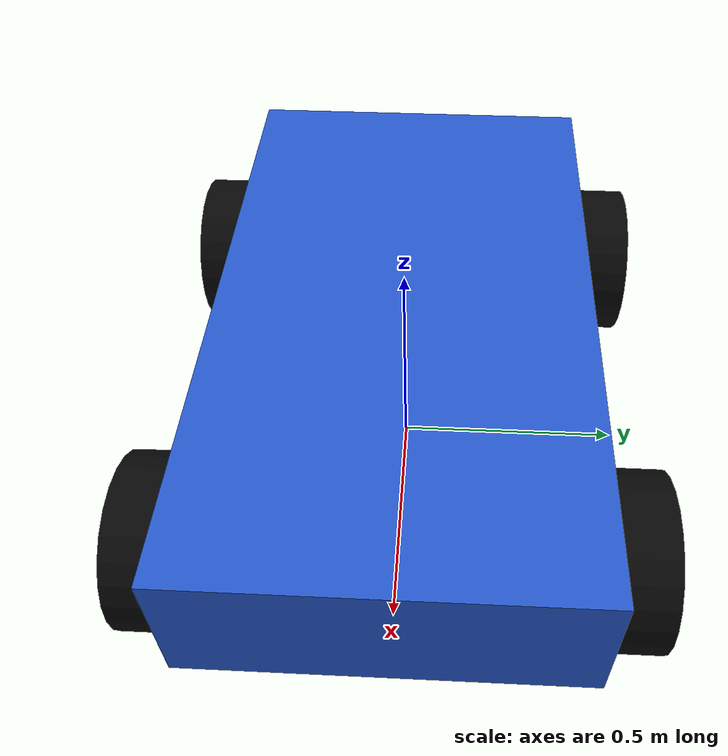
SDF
<?xml version="1.0"?>

<sdf version="1.10">

  <model name="brobot_car">

    <!-- base chassis -->

    <link name="base_link">

      <pose>0 0 0.30 0 0 0</pose>

      <inertial>

        <mass>12.0</mass>

        <inertia>

          <ixx>0.65</ixx>
          <iyy>1.05</iyy>
          <izz>1.35</izz>

          <ixy>0</ixy>
          <ixz>0</ixz>
          <iyz>0</iyz>

        </inertia>

      </inertial>

      <!-- chassis collision -->

      <collision name="base_collision">

        <geometry>

          <box>
            <size>1.4 0.8 0.30</size>
          </box>

        </geometry>

      </collision>

      <!-- chassis visual -->

      <visual name="base_visual">

        <geometry>

          <box>
            <size>1.4 0.8 0.30</size>
          </box>

        </geometry>

        <material>

          <ambient>0.15 0.35 0.8 1</ambient>
          <diffuse>0.15 0.35 0.8 1</diffuse>

        </material>

      </visual>

    </link>

    <!-- front left wheel-->

    <link name="front_left_wheel">

      <pose>0.45 0.47 0.18 1.5708 0 0</pose>

      <inertial>

        <mass>1.0</mass>

        <inertia>

          <ixx>0.015</ixx>
          <iyy>0.015</iyy>
          <izz>0.015</izz>

          <ixy>0</ixy>
          <ixz>0</ixz>
          <iyz>0</iyz>

        </inertia>

      </inertial>

      <collision name="collision">

        <geometry>

          <cylinder>
            <radius>0.18</radius>
            <length>0.12</length>
          </cylinder>

        </geometry>

      </collision>

      <visual name="visual">

        <geometry>

          <cylinder>
            <radius>0.18</radius>
            <length>0.12</length>
          </cylinder>

        </geometry>

        <material>

          <ambient>0.03 0.03 0.03 1</ambient>
          <diffuse>0.03 0.03 0.03 1</diffuse>

        </material>

      </visual>

    </link>

    <!-- front right wheel -->

    <link name="front_right_wheel">

      <pose>0.45 -0.47 0.18 1.5708 0 0</pose>

      <inertial>

        <mass>1.0</mass>

        <inertia>

          <ixx>0.015</ixx>
          <iyy>0.015</iyy>
          <izz>0.015</izz>

          <ixy>0</ixy>
          <ixz>0</ixz>
          <iyz>0</iyz>

        </inertia>

      </inertial>

      <collision name="collision">

        <geometry>

          <cylinder>
            <radius>0.18</radius>
            <length>0.12</length>
          </cylinder>

        </geometry>

      </collision>

      <visual name="visual">

        <geometry>

          <cylinder>
            <radius>0.18</radius>
            <length>0.12</length>
          </cylinder>

        </geometry>

        <material>

          <ambient>0.03 0.03 0.03 1</ambient>
          <diffuse>0.03 0.03 0.03 1</diffuse>

        </material>

      </visual>

    </link>

    <!-- rear left wheel -->

    <link name="rear_left_wheel">

      <pose>-0.45 0.47 0.18 1.5708 0 0</pose>

      <inertial>

        <mass>1.0</mass>

        <inertia>

          <ixx>0.015</ixx>
          <iyy>0.015</iyy>
          <izz>0.015</izz>

          <ixy>0</ixy>
          <ixz>0</ixz>
          <iyz>0</iyz>

        </inertia>

      </inertial>

      <collision name="collision">

        <geometry>

          <cylinder>
            <radius>0.18</radius>
            <length>0.12</length>
          </cylinder>

        </geometry>

      </collision>

      <visual name="visual">

        <geometry>

          <cylinder>
            <radius>0.18</radius>
            <length>0.12</length>
          </cylinder>

        </geometry>

        <material>

          <ambient>0.03 0.03 0.03 1</ambient>
          <diffuse>0.03 0.03 0.03 1</diffuse>

        </material>

      </visual>

    </link>

    <!-- rear right wheel-->

    <link name="rear_right_wheel">

      <pose>-0.45 -0.47 0.18 1.5708 0 0</pose>

      <inertial>

        <mass>1.0</mass>

        <inertia>

          <ixx>0.015</ixx>
          <iyy>0.015</iyy>
          <izz>0.015</izz>

          <ixy>0</ixy>
          <ixz>0</ixz>
          <iyz>0</iyz>

        </inertia>

      </inertial>

      <collision name="collision">

        <geometry>

          <cylinder>
            <radius>0.18</radius>
            <length>0.12</length>
          </cylinder>

        </geometry>

      </collision>

      <visual name="visual">

        <geometry>

          <cylinder>
            <radius>0.18</radius>
            <length>0.12</length>
          </cylinder>

        </geometry>

        <material>

          <ambient>0.03 0.03 0.03 1</ambient>
          <diffuse>0.03 0.03 0.03 1</diffuse>

        </material>

      </visual>

    </link>

    <!-- wheel joints -->

    <joint
      name="front_left_wheel_joint"
      type="revolute">

      <parent>base_link</parent>
      <child>front_left_wheel</child>

      <axis>

        <xyz>0 1 0</xyz>

        <limit>
          <lower>-1e16</lower>
          <upper>1e16</upper>
        </limit>

      </axis>

    </joint>

    <joint
      name="front_right_wheel_joint"
      type="revolute">

      <parent>base_link</parent>
      <child>front_right_wheel</child>

      <axis>

        <xyz>0 1 0</xyz>

        <limit>
          <lower>-1e16</lower>
          <upper>1e16</upper>
        </limit>

      </axis>

    </joint>

    <joint
      name="rear_left_wheel_joint"
      type="revolute">

      <parent>base_link</parent>
      <child>rear_left_wheel</child>

      <axis>

        <xyz>0 1 0</xyz>

        <limit>
          <lower>-1e16</lower>
          <upper>1e16</upper>
        </limit>

      </axis>

    </joint>

    <joint
      name="rear_right_wheel_joint"
      type="revolute">

      <parent>base_link</parent>
      <child>rear_right_wheel</child>

      <axis>

        <xyz>0 1 0</xyz>

        <limit>
          <lower>-1e16</lower>
          <upper>1e16</upper>
        </limit>

      </axis>

    </joint>

    <!-- differential drive -->

    <plugin
      filename="gz-sim-diff-drive-system"
      name="gz::sim::systems::DiffDrive">

      <!-- Left side -->
      <left_joint>front_left_wheel_joint</left_joint>
      <left_joint>rear_left_wheel_joint</left_joint>

      <!-- Right side -->
      <right_joint>front_right_wheel_joint</right_joint>
      <right_joint>rear_right_wheel_joint</right_joint>

      <wheel_separation>0.94</wheel_separation>
      <wheel_radius>0.18</wheel_radius>

      <topic>/model/brobot_car/cmd_vel</topic>

      <odom_topic>/model/brobot_car/odometry</odom_topic>

      <tf_topic>/model/brobot_car/tf</tf_topic>

      <frame_id>odom</frame_id>
      <child_frame_id>base_link</child_frame_id>

      <odom_publish_frequency>30</odom_publish_frequency>

      <max_linear_velocity>2.0</max_linear_velocity>
      <max_angular_velocity>3.0</max_angular_velocity>

    </plugin>

  </model>

</sdf>
